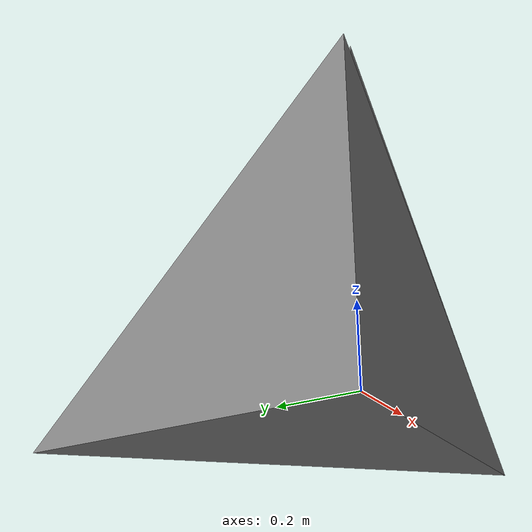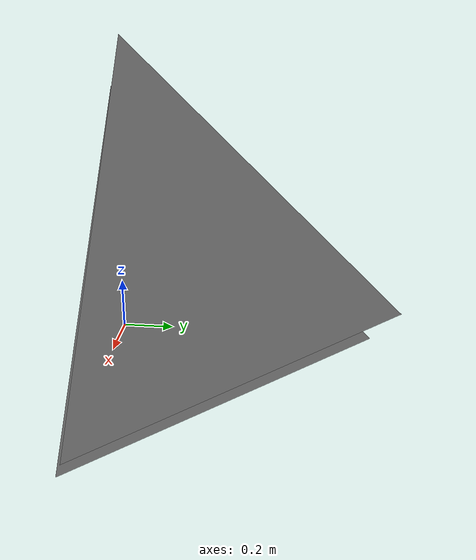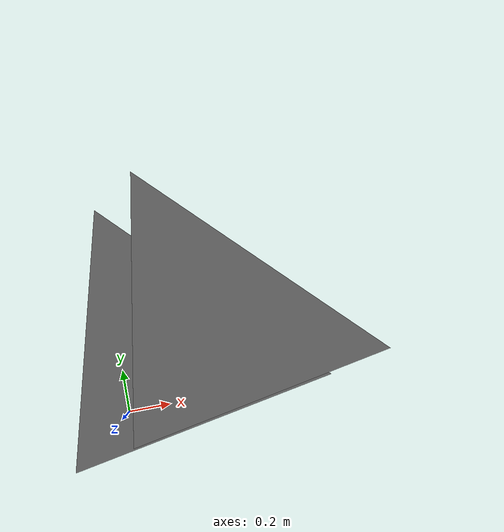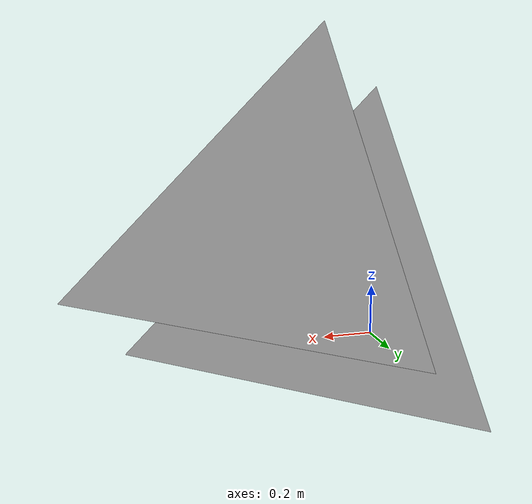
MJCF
<mujoco model="contact_dynamic_mesh_mesh_rotated">
  <option gravity="0 0 0" timestep="0.005"/>
  <asset>
    <mesh name="tetra" vertex="0 0 0 1 0 0 0 1 0 0 0 1"
          face="0 2 1 0 1 3 0 3 2 1 2 3"/>
  </asset>
  <contact>
    <pair geom1="mesh_static" geom2="mesh_rotated"/>
  </contact>
  <worldbody>
    <geom name="mesh_static" type="mesh" mesh="tetra"/>
    <body name="mesh_rotated_body" pos="0.25 0.1 0.25" euler="0 0 0.4">
      <freejoint/>
      <inertial pos="0 0 0" mass="1" diaginertia="0.166667 0.166667 0.166667"/>
      <geom name="mesh_rotated" type="mesh" mesh="tetra"/>
    </body>
  </worldbody>
</mujoco>
